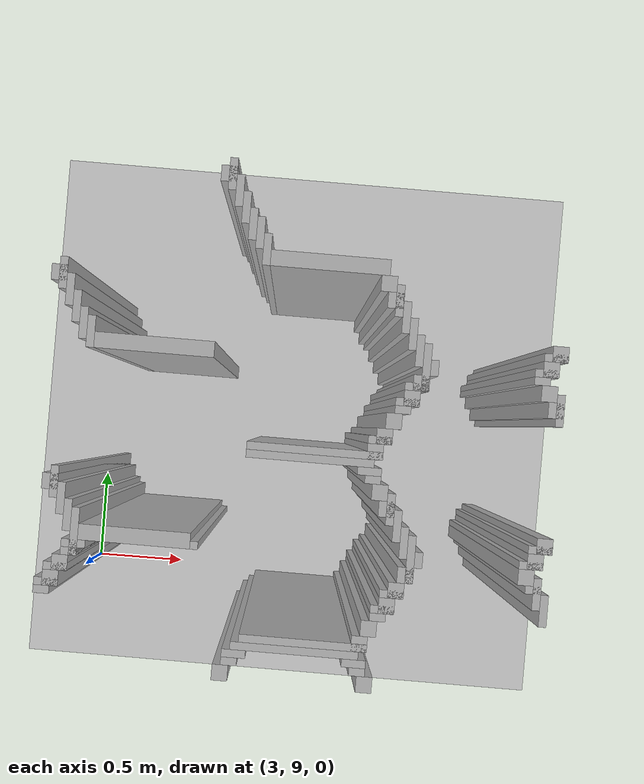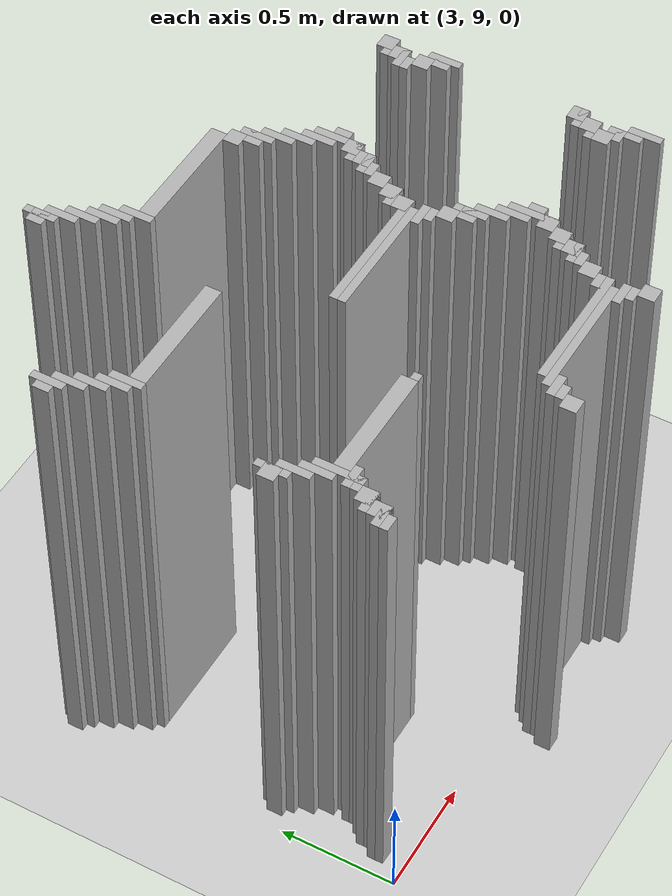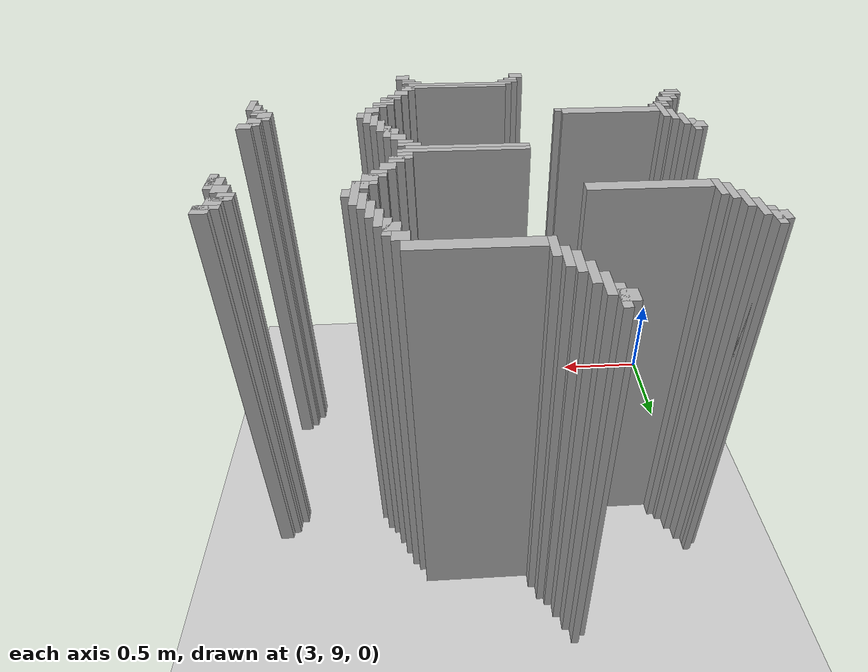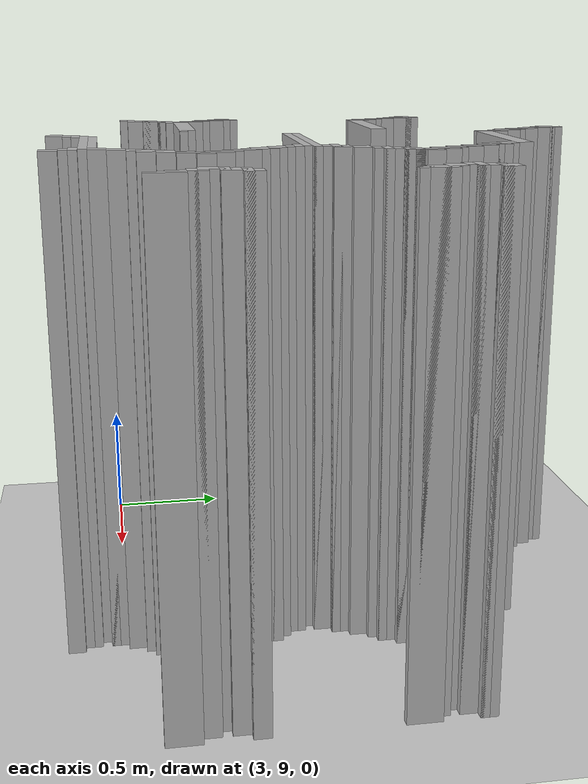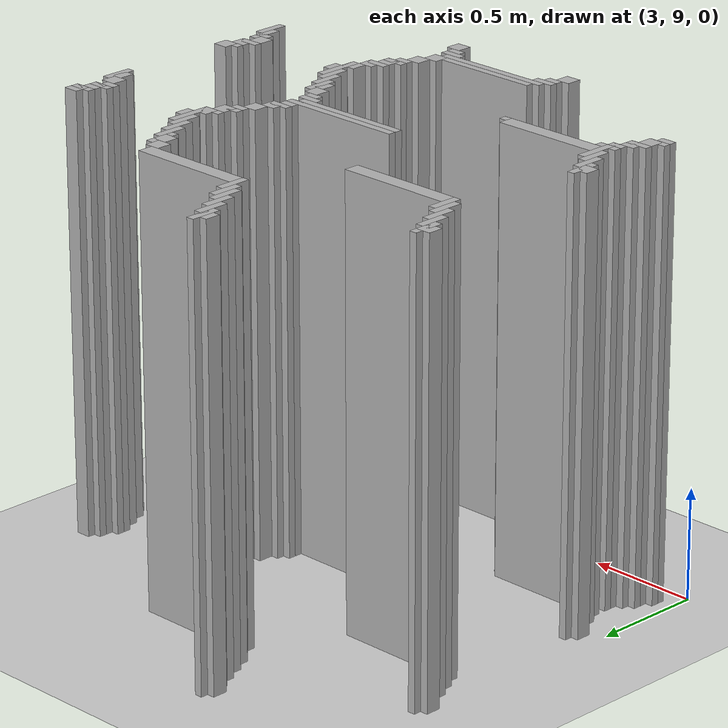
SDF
<sdf version="1.6">
 <world name="slam_world">
  <model name="ground_plane">
   <static>true</static>
   <link name="link">
    <collision name="collision">
     <geometry><plane><normal>0 0 1</normal><size>100 100</size></plane></geometry>
    </collision>
    <visual name="visual">
     <geometry><plane><normal>0 0 1</normal><size>100 100</size></plane></geometry>
     <material>
      <ambient>0.8 0.8 0.8 1</ambient>
      <diffuse>0.8 0.8 0.8 1</diffuse>
      <specular>0.8 0.8 0.8 1</specular>
     </material>
    </visual>
   </link>
  </model>
  <model name="wall_2164">
   <static>true</static>
   <pose>3.776102088167053 10.962877030162412 1.0 0 0 0</pose>
   <link name="link">
    <collision name="collision">
     <geometry><box><size>0.03480278422273782 0.13921113689095127 2.0</size></box></geometry>
    </collision>
    <visual name="visual">
     <geometry><box><size>0.03480278422273782 0.13921113689095127 2.0</size></box></geometry>
     <material><ambient>0.5 0.5 0.5 1</ambient><diffuse>0.7 0.7 0.7 1</diffuse></material>
    </visual>
   </link>
  </model>
  <model name="wall_2177">
   <static>true</static>
   <pose>3.7587006960556844 10.962877030162412 1.0 0 0 0</pose>
   <link name="link">
    <collision name="collision">
     <geometry><box><size>0.06960556844547564 0.06960556844547564 2.0</size></box></geometry>
    </collision>
    <visual name="visual">
     <geometry><box><size>0.06960556844547564 0.06960556844547564 2.0</size></box></geometry>
     <material><ambient>0.5 0.5 0.5 1</ambient><diffuse>0.7 0.7 0.7 1</diffuse></material>
    </visual>
   </link>
  </model>
  <model name="wall_2192">
   <static>true</static>
   <pose>3.810904872389791 10.893271461716937 1.0 0 0 0</pose>
   <link name="link">
    <collision name="collision">
     <geometry><box><size>0.03480278422273782 0.13921113689095127 2.0</size></box></geometry>
    </collision>
    <visual name="visual">
     <geometry><box><size>0.03480278422273782 0.13921113689095127 2.0</size></box></geometry>
     <material><ambient>0.5 0.5 0.5 1</ambient><diffuse>0.7 0.7 0.7 1</diffuse></material>
    </visual>
   </link>
  </model>
  <model name="wall_2217">
   <static>true</static>
   <pose>3.845707656612529 10.82366589327146 1.0 0 0 0</pose>
   <link name="link">
    <collision name="collision">
     <geometry><box><size>0.03480278422273782 0.13921113689095127 2.0</size></box></geometry>
    </collision>
    <visual name="visual">
     <geometry><box><size>0.03480278422273782 0.13921113689095127 2.0</size></box></geometry>
     <material><ambient>0.5 0.5 0.5 1</ambient><diffuse>0.7 0.7 0.7 1</diffuse></material>
    </visual>
   </link>
  </model>
  <model name="wall_2232">
   <static>true</static>
   <pose>3.8805104408352666 10.754060324825986 1.0 0 0 0</pose>
   <link name="link">
    <collision name="collision">
     <geometry><box><size>0.03480278422273782 0.13921113689095127 2.0</size></box></geometry>
    </collision>
    <visual name="visual">
     <geometry><box><size>0.03480278422273782 0.13921113689095127 2.0</size></box></geometry>
     <material><ambient>0.5 0.5 0.5 1</ambient><diffuse>0.7 0.7 0.7 1</diffuse></material>
    </visual>
   </link>
  </model>
  <model name="wall_2247">
   <static>true</static>
   <pose>3.9153132250580045 10.719257540603248 1.0 0 0 0</pose>
   <link name="link">
    <collision name="collision">
     <geometry><box><size>0.03480278422273782 0.13921113689095127 2.0</size></box></geometry>
    </collision>
    <visual name="visual">
     <geometry><box><size>0.03480278422273782 0.13921113689095127 2.0</size></box></geometry>
     <material><ambient>0.5 0.5 0.5 1</ambient><diffuse>0.7 0.7 0.7 1</diffuse></material>
    </visual>
   </link>
  </model>
  <model name="wall_2269">
   <static>true</static>
   <pose>3.9501160092807424 10.649651972157772 1.0 0 0 0</pose>
   <link name="link">
    <collision name="collision">
     <geometry><box><size>0.03480278422273782 0.13921113689095127 2.0</size></box></geometry>
    </collision>
    <visual name="visual">
     <geometry><box><size>0.03480278422273782 0.13921113689095127 2.0</size></box></geometry>
     <material><ambient>0.5 0.5 0.5 1</ambient><diffuse>0.7 0.7 0.7 1</diffuse></material>
    </visual>
   </link>
  </model>
  <model name="wall_2291">
   <static>true</static>
   <pose>4.228538283062645 10.614849187935034 1.0 0 0 0</pose>
   <link name="link">
    <collision name="collision">
     <geometry><box><size>0.5220417633410672 0.06960556844547564 2.0</size></box></geometry>
    </collision>
    <visual name="visual">
     <geometry><box><size>0.5220417633410672 0.06960556844547564 2.0</size></box></geometry>
     <material><ambient>0.5 0.5 0.5 1</ambient><diffuse>0.7 0.7 0.7 1</diffuse></material>
    </visual>
   </link>
  </model>
  <model name="wall_2306">
   <static>true</static>
   <pose>4.489559164733178 10.54524361948956 1.0 0 0 0</pose>
   <link name="link">
    <collision name="collision">
     <geometry><box><size>0.06960556844547564 0.06960556844547564 2.0</size></box></geometry>
    </collision>
    <visual name="visual">
     <geometry><box><size>0.06960556844547564 0.06960556844547564 2.0</size></box></geometry>
     <material><ambient>0.5 0.5 0.5 1</ambient><diffuse>0.7 0.7 0.7 1</diffuse></material>
    </visual>
   </link>
  </model>
  <model name="wall_2320">
   <static>true</static>
   <pose>3.0800464037122968 10.475638051044083 1.0 0 0 0</pose>
   <link name="link">
    <collision name="collision">
     <geometry><box><size>0.03480278422273782 0.13921113689095127 2.0</size></box></geometry>
    </collision>
    <visual name="visual">
     <geometry><box><size>0.03480278422273782 0.13921113689095127 2.0</size></box></geometry>
     <material><ambient>0.5 0.5 0.5 1</ambient><diffuse>0.7 0.7 0.7 1</diffuse></material>
    </visual>
   </link>
  </model>
  <model name="wall_2321">
   <static>true</static>
   <pose>4.541763341067285 10.475638051044083 1.0 0 0 0</pose>
   <link name="link">
    <collision name="collision">
     <geometry><box><size>0.03480278422273782 0.13921113689095127 2.0</size></box></geometry>
    </collision>
    <visual name="visual">
     <geometry><box><size>0.03480278422273782 0.13921113689095127 2.0</size></box></geometry>
     <material><ambient>0.5 0.5 0.5 1</ambient><diffuse>0.7 0.7 0.7 1</diffuse></material>
    </visual>
   </link>
  </model>
  <model name="wall_2335">
   <static>true</static>
   <pose>3.062645011600928 10.475638051044083 1.0 0 0 0</pose>
   <link name="link">
    <collision name="collision">
     <geometry><box><size>0.06960556844547564 0.06960556844547564 2.0</size></box></geometry>
    </collision>
    <visual name="visual">
     <geometry><box><size>0.06960556844547564 0.06960556844547564 2.0</size></box></geometry>
     <material><ambient>0.5 0.5 0.5 1</ambient><diffuse>0.7 0.7 0.7 1</diffuse></material>
    </visual>
   </link>
  </model>
  <model name="wall_2336">
   <static>true</static>
   <pose>4.524361948955916 10.475638051044083 1.0 0 0 0</pose>
   <link name="link">
    <collision name="collision">
     <geometry><box><size>0.06960556844547564 0.06960556844547564 2.0</size></box></geometry>
    </collision>
    <visual name="visual">
     <geometry><box><size>0.06960556844547564 0.06960556844547564 2.0</size></box></geometry>
     <material><ambient>0.5 0.5 0.5 1</ambient><diffuse>0.7 0.7 0.7 1</diffuse></material>
    </visual>
   </link>
  </model>
  <model name="wall_2350">
   <static>true</static>
   <pose>3.1148491879350346 10.406032482598608 1.0 0 0 0</pose>
   <link name="link">
    <collision name="collision">
     <geometry><box><size>0.03480278422273782 0.13921113689095127 2.0</size></box></geometry>
    </collision>
    <visual name="visual">
     <geometry><box><size>0.03480278422273782 0.13921113689095127 2.0</size></box></geometry>
     <material><ambient>0.5 0.5 0.5 1</ambient><diffuse>0.7 0.7 0.7 1</diffuse></material>
    </visual>
   </link>
  </model>
  <model name="wall_2351">
   <static>true</static>
   <pose>4.576566125290023 10.406032482598608 1.0 0 0 0</pose>
   <link name="link">
    <collision name="collision">
     <geometry><box><size>0.03480278422273782 0.13921113689095127 2.0</size></box></geometry>
    </collision>
    <visual name="visual">
     <geometry><box><size>0.03480278422273782 0.13921113689095127 2.0</size></box></geometry>
     <material><ambient>0.5 0.5 0.5 1</ambient><diffuse>0.7 0.7 0.7 1</diffuse></material>
    </visual>
   </link>
  </model>
  <model name="wall_2370">
   <static>true</static>
   <pose>3.1496519721577725 10.336426914153131 1.0 0 0 0</pose>
   <link name="link">
    <collision name="collision">
     <geometry><box><size>0.03480278422273782 0.13921113689095127 2.0</size></box></geometry>
    </collision>
    <visual name="visual">
     <geometry><box><size>0.03480278422273782 0.13921113689095127 2.0</size></box></geometry>
     <material><ambient>0.5 0.5 0.5 1</ambient><diffuse>0.7 0.7 0.7 1</diffuse></material>
    </visual>
   </link>
  </model>
  <model name="wall_2371">
   <static>true</static>
   <pose>4.611368909512761 10.336426914153131 1.0 0 0 0</pose>
   <link name="link">
    <collision name="collision">
     <geometry><box><size>0.03480278422273782 0.13921113689095127 2.0</size></box></geometry>
    </collision>
    <visual name="visual">
     <geometry><box><size>0.03480278422273782 0.13921113689095127 2.0</size></box></geometry>
     <material><ambient>0.5 0.5 0.5 1</ambient><diffuse>0.7 0.7 0.7 1</diffuse></material>
    </visual>
   </link>
  </model>
  <model name="wall_2385">
   <static>true</static>
   <pose>3.1844547563805103 10.266821345707656 1.0 0 0 0</pose>
   <link name="link">
    <collision name="collision">
     <geometry><box><size>0.03480278422273782 0.13921113689095127 2.0</size></box></geometry>
    </collision>
    <visual name="visual">
     <geometry><box><size>0.03480278422273782 0.13921113689095127 2.0</size></box></geometry>
     <material><ambient>0.5 0.5 0.5 1</ambient><diffuse>0.7 0.7 0.7 1</diffuse></material>
    </visual>
   </link>
  </model>
  <model name="wall_2386">
   <static>true</static>
   <pose>4.646171693735498 10.266821345707656 1.0 0 0 0</pose>
   <link name="link">
    <collision name="collision">
     <geometry><box><size>0.03480278422273782 0.13921113689095127 2.0</size></box></geometry>
    </collision>
    <visual name="visual">
     <geometry><box><size>0.03480278422273782 0.13921113689095127 2.0</size></box></geometry>
     <material><ambient>0.5 0.5 0.5 1</ambient><diffuse>0.7 0.7 0.7 1</diffuse></material>
    </visual>
   </link>
  </model>
  <model name="wall_2387">
   <static>true</static>
   <pose>5.25522041763341 10.301624129930394 1.0 0 0 0</pose>
   <link name="link">
    <collision name="collision">
     <geometry><box><size>0.06960556844547564 0.06960556844547564 2.0</size></box></geometry>
    </collision>
    <visual name="visual">
     <geometry><box><size>0.06960556844547564 0.06960556844547564 2.0</size></box></geometry>
     <material><ambient>0.5 0.5 0.5 1</ambient><diffuse>0.7 0.7 0.7 1</diffuse></material>
    </visual>
   </link>
  </model>
  <model name="wall_2400">
   <static>true</static>
   <pose>3.219257540603248 10.232018561484919 1.0 0 0 0</pose>
   <link name="link">
    <collision name="collision">
     <geometry><box><size>0.03480278422273782 0.13921113689095127 2.0</size></box></geometry>
    </collision>
    <visual name="visual">
     <geometry><box><size>0.03480278422273782 0.13921113689095127 2.0</size></box></geometry>
     <material><ambient>0.5 0.5 0.5 1</ambient><diffuse>0.7 0.7 0.7 1</diffuse></material>
    </visual>
   </link>
  </model>
  <model name="wall_2401">
   <static>true</static>
   <pose>4.6809744779582365 10.19721577726218 1.0 0 0 0</pose>
   <link name="link">
    <collision name="collision">
     <geometry><box><size>0.03480278422273782 0.2088167053364269 2.0</size></box></geometry>
    </collision>
    <visual name="visual">
     <geometry><box><size>0.03480278422273782 0.2088167053364269 2.0</size></box></geometry>
     <material><ambient>0.5 0.5 0.5 1</ambient><diffuse>0.7 0.7 0.7 1</diffuse></material>
    </visual>
   </link>
  </model>
  <model name="wall_2402">
   <static>true</static>
   <pose>5.237819025522041 10.284222737819025 1.0 0 0 0</pose>
   <link name="link">
    <collision name="collision">
     <geometry><box><size>0.10440835266821345 0.03480278422273782 2.0</size></box></geometry>
    </collision>
    <visual name="visual">
     <geometry><box><size>0.10440835266821345 0.03480278422273782 2.0</size></box></geometry>
     <material><ambient>0.5 0.5 0.5 1</ambient><diffuse>0.7 0.7 0.7 1</diffuse></material>
    </visual>
   </link>
  </model>
  <model name="wall_2413">
   <static>true</static>
   <pose>5.220417633410673 10.232018561484919 1.0 0 0 0</pose>
   <link name="link">
    <collision name="collision">
     <geometry><box><size>0.06960556844547564 0.06960556844547564 2.0</size></box></geometry>
    </collision>
    <visual name="visual">
     <geometry><box><size>0.06960556844547564 0.06960556844547564 2.0</size></box></geometry>
     <material><ambient>0.5 0.5 0.5 1</ambient><diffuse>0.7 0.7 0.7 1</diffuse></material>
    </visual>
   </link>
  </model>
  <model name="wall_2420">
   <static>true</static>
   <pose>3.4976798143851506 10.19721577726218 1.0 0 0 0</pose>
   <link name="link">
    <collision name="collision">
     <geometry><box><size>0.5220417633410672 0.06960556844547564 2.0</size></box></geometry>
    </collision>
    <visual name="visual">
     <geometry><box><size>0.5220417633410672 0.06960556844547564 2.0</size></box></geometry>
     <material><ambient>0.5 0.5 0.5 1</ambient><diffuse>0.7 0.7 0.7 1</diffuse></material>
    </visual>
   </link>
  </model>
  <model name="wall_2421">
   <static>true</static>
   <pose>4.715777262180974 10.19721577726218 1.0 0 0 0</pose>
   <link name="link">
    <collision name="collision">
     <geometry><box><size>0.03480278422273782 0.06960556844547564 2.0</size></box></geometry>
    </collision>
    <visual name="visual">
     <geometry><box><size>0.03480278422273782 0.06960556844547564 2.0</size></box></geometry>
     <material><ambient>0.5 0.5 0.5 1</ambient><diffuse>0.7 0.7 0.7 1</diffuse></material>
    </visual>
   </link>
  </model>
  <model name="wall_2422">
   <static>true</static>
   <pose>5.203016241299304 10.214617169373549 1.0 0 0 0</pose>
   <link name="link">
    <collision name="collision">
     <geometry><box><size>0.10440835266821345 0.03480278422273782 2.0</size></box></geometry>
    </collision>
    <visual name="visual">
     <geometry><box><size>0.10440835266821345 0.03480278422273782 2.0</size></box></geometry>
     <material><ambient>0.5 0.5 0.5 1</ambient><diffuse>0.7 0.7 0.7 1</diffuse></material>
    </visual>
   </link>
  </model>
  <model name="wall_2434">
   <static>true</static>
   <pose>5.185614849187935 10.179814385150811 1.0 0 0 0</pose>
   <link name="link">
    <collision name="collision">
     <geometry><box><size>0.06960556844547564 0.03480278422273782 2.0</size></box></geometry>
    </collision>
    <visual name="visual">
     <geometry><box><size>0.06960556844547564 0.03480278422273782 2.0</size></box></geometry>
     <material><ambient>0.5 0.5 0.5 1</ambient><diffuse>0.7 0.7 0.7 1</diffuse></material>
    </visual>
   </link>
  </model>
  <model name="wall_2441">
   <static>true</static>
   <pose>4.663573085846868 10.127610208816705 1.0 0 0 0</pose>
   <link name="link">
    <collision name="collision">
     <geometry><box><size>0.06960556844547564 0.06960556844547564 2.0</size></box></geometry>
    </collision>
    <visual name="visual">
     <geometry><box><size>0.06960556844547564 0.06960556844547564 2.0</size></box></geometry>
     <material><ambient>0.5 0.5 0.5 1</ambient><diffuse>0.7 0.7 0.7 1</diffuse></material>
    </visual>
   </link>
  </model>
  <model name="wall_2442">
   <static>true</static>
   <pose>5.220417633410673 10.127610208816705 1.0 0 0 0</pose>
   <link name="link">
    <collision name="collision">
     <geometry><box><size>0.06960556844547564 0.06960556844547564 2.0</size></box></geometry>
    </collision>
    <visual name="visual">
     <geometry><box><size>0.06960556844547564 0.06960556844547564 2.0</size></box></geometry>
     <material><ambient>0.5 0.5 0.5 1</ambient><diffuse>0.7 0.7 0.7 1</diffuse></material>
    </visual>
   </link>
  </model>
  <model name="wall_2455">
   <static>true</static>
   <pose>4.646171693735498 10.110208816705336 1.0 0 0 0</pose>
   <link name="link">
    <collision name="collision">
     <geometry><box><size>0.10440835266821345 0.03480278422273782 2.0</size></box></geometry>
    </collision>
    <visual name="visual">
     <geometry><box><size>0.10440835266821345 0.03480278422273782 2.0</size></box></geometry>
     <material><ambient>0.5 0.5 0.5 1</ambient><diffuse>0.7 0.7 0.7 1</diffuse></material>
    </visual>
   </link>
  </model>
  <model name="wall_2456">
   <static>true</static>
   <pose>5.27262180974478 10.058004640371228 1.0 0 0 0</pose>
   <link name="link">
    <collision name="collision">
     <geometry><box><size>0.03480278422273782 0.13921113689095127 2.0</size></box></geometry>
    </collision>
    <visual name="visual">
     <geometry><box><size>0.03480278422273782 0.13921113689095127 2.0</size></box></geometry>
     <material><ambient>0.5 0.5 0.5 1</ambient><diffuse>0.7 0.7 0.7 1</diffuse></material>
    </visual>
   </link>
  </model>
  <model name="wall_2469">
   <static>true</static>
   <pose>4.6287703016241295 10.058004640371228 1.0 0 0 0</pose>
   <link name="link">
    <collision name="collision">
     <geometry><box><size>0.06960556844547564 0.06960556844547564 2.0</size></box></geometry>
    </collision>
    <visual name="visual">
     <geometry><box><size>0.06960556844547564 0.06960556844547564 2.0</size></box></geometry>
     <material><ambient>0.5 0.5 0.5 1</ambient><diffuse>0.7 0.7 0.7 1</diffuse></material>
    </visual>
   </link>
  </model>
  <model name="wall_2470">
   <static>true</static>
   <pose>5.25522041763341 10.058004640371228 1.0 0 0 0</pose>
   <link name="link">
    <collision name="collision">
     <geometry><box><size>0.06960556844547564 0.06960556844547564 2.0</size></box></geometry>
    </collision>
    <visual name="visual">
     <geometry><box><size>0.06960556844547564 0.06960556844547564 2.0</size></box></geometry>
     <material><ambient>0.5 0.5 0.5 1</ambient><diffuse>0.7 0.7 0.7 1</diffuse></material>
    </visual>
   </link>
  </model>
  <model name="wall_2483">
   <static>true</static>
   <pose>4.611368909512761 10.04060324825986 1.0 0 0 0</pose>
   <link name="link">
    <collision name="collision">
     <geometry><box><size>0.10440835266821345 0.03480278422273782 2.0</size></box></geometry>
    </collision>
    <visual name="visual">
     <geometry><box><size>0.10440835266821345 0.03480278422273782 2.0</size></box></geometry>
     <material><ambient>0.5 0.5 0.5 1</ambient><diffuse>0.7 0.7 0.7 1</diffuse></material>
    </visual>
   </link>
  </model>
  <model name="wall_2495">
   <static>true</static>
   <pose>4.593967517401392 10.005800464037122 1.0 0 0 0</pose>
   <link name="link">
    <collision name="collision">
     <geometry><box><size>0.06960556844547564 0.03480278422273782 2.0</size></box></geometry>
    </collision>
    <visual name="visual">
     <geometry><box><size>0.06960556844547564 0.03480278422273782 2.0</size></box></geometry>
     <material><ambient>0.5 0.5 0.5 1</ambient><diffuse>0.7 0.7 0.7 1</diffuse></material>
    </visual>
   </link>
  </model>
  <model name="wall_2506">
   <static>true</static>
   <pose>4.559164733178654 9.953596287703016 1.0 0 0 0</pose>
   <link name="link">
    <collision name="collision">
     <geometry><box><size>0.06960556844547564 0.06960556844547564 2.0</size></box></geometry>
    </collision>
    <visual name="visual">
     <geometry><box><size>0.06960556844547564 0.06960556844547564 2.0</size></box></geometry>
     <material><ambient>0.5 0.5 0.5 1</ambient><diffuse>0.7 0.7 0.7 1</diffuse></material>
    </visual>
   </link>
  </model>
  <model name="wall_2520">
   <static>true</static>
   <pose>4.524361948955916 9.88399071925754 1.0 0 0 0</pose>
   <link name="link">
    <collision name="collision">
     <geometry><box><size>0.06960556844547564 0.06960556844547564 2.0</size></box></geometry>
    </collision>
    <visual name="visual">
     <geometry><box><size>0.06960556844547564 0.06960556844547564 2.0</size></box></geometry>
     <material><ambient>0.5 0.5 0.5 1</ambient><diffuse>0.7 0.7 0.7 1</diffuse></material>
    </visual>
   </link>
  </model>
  <model name="wall_2534">
   <static>true</static>
   <pose>4.506960556844548 9.86658932714617 1.0 0 0 0</pose>
   <link name="link">
    <collision name="collision">
     <geometry><box><size>0.10440835266821345 0.03480278422273782 2.0</size></box></geometry>
    </collision>
    <visual name="visual">
     <geometry><box><size>0.10440835266821345 0.03480278422273782 2.0</size></box></geometry>
     <material><ambient>0.5 0.5 0.5 1</ambient><diffuse>0.7 0.7 0.7 1</diffuse></material>
    </visual>
   </link>
  </model>
  <model name="wall_2546">
   <static>true</static>
   <pose>4.489559164733178 9.814385150812065 1.0 0 0 0</pose>
   <link name="link">
    <collision name="collision">
     <geometry><box><size>0.06960556844547564 0.06960556844547564 2.0</size></box></geometry>
    </collision>
    <visual name="visual">
     <geometry><box><size>0.06960556844547564 0.06960556844547564 2.0</size></box></geometry>
     <material><ambient>0.5 0.5 0.5 1</ambient><diffuse>0.7 0.7 0.7 1</diffuse></material>
    </visual>
   </link>
  </model>
  <model name="wall_2557">
   <static>true</static>
   <pose>4.228538283062645 9.796983758700696 1.0 0 0 0</pose>
   <link name="link">
    <collision name="collision">
     <geometry><box><size>0.5916473317865429 0.03480278422273782 2.0</size></box></geometry>
    </collision>
    <visual name="visual">
     <geometry><box><size>0.5916473317865429 0.03480278422273782 2.0</size></box></geometry>
     <material><ambient>0.5 0.5 0.5 1</ambient><diffuse>0.7 0.7 0.7 1</diffuse></material>
    </visual>
   </link>
  </model>
  <model name="wall_2567">
   <static>true</static>
   <pose>4.211136890951276 9.762180974477959 1.0 0 0 0</pose>
   <link name="link">
    <collision name="collision">
     <geometry><box><size>0.5568445475638051 0.03480278422273782 2.0</size></box></geometry>
    </collision>
    <visual name="visual">
     <geometry><box><size>0.5568445475638051 0.03480278422273782 2.0</size></box></geometry>
     <material><ambient>0.5 0.5 0.5 1</ambient><diffuse>0.7 0.7 0.7 1</diffuse></material>
    </visual>
   </link>
  </model>
  <model name="wall_2579">
   <static>true</static>
   <pose>4.472157772621809 9.72737819025522 1.0 0 0 0</pose>
   <link name="link">
    <collision name="collision">
     <geometry><box><size>0.10440835266821345 0.03480278422273782 2.0</size></box></geometry>
    </collision>
    <visual name="visual">
     <geometry><box><size>0.10440835266821345 0.03480278422273782 2.0</size></box></geometry>
     <material><ambient>0.5 0.5 0.5 1</ambient><diffuse>0.7 0.7 0.7 1</diffuse></material>
    </visual>
   </link>
  </model>
  <model name="wall_2592">
   <static>true</static>
   <pose>4.489559164733178 9.692575406032482 1.0 0 0 0</pose>
   <link name="link">
    <collision name="collision">
     <geometry><box><size>0.06960556844547564 0.03480278422273782 2.0</size></box></geometry>
    </collision>
    <visual name="visual">
     <geometry><box><size>0.06960556844547564 0.03480278422273782 2.0</size></box></geometry>
     <material><ambient>0.5 0.5 0.5 1</ambient><diffuse>0.7 0.7 0.7 1</diffuse></material>
    </visual>
   </link>
  </model>
  <model name="wall_2604">
   <static>true</static>
   <pose>4.524361948955916 9.640371229698376 1.0 0 0 0</pose>
   <link name="link">
    <collision name="collision">
     <geometry><box><size>0.06960556844547564 0.06960556844547564 2.0</size></box></geometry>
    </collision>
    <visual name="visual">
     <geometry><box><size>0.06960556844547564 0.06960556844547564 2.0</size></box></geometry>
     <material><ambient>0.5 0.5 0.5 1</ambient><diffuse>0.7 0.7 0.7 1</diffuse></material>
    </visual>
   </link>
  </model>
  <model name="wall_2617">
   <static>true</static>
   <pose>3.1148491879350346 9.5707656612529 1.0 0 0 0</pose>
   <link name="link">
    <collision name="collision">
     <geometry><box><size>0.03480278422273782 0.13921113689095127 2.0</size></box></geometry>
    </collision>
    <visual name="visual">
     <geometry><box><size>0.03480278422273782 0.13921113689095127 2.0</size></box></geometry>
     <material><ambient>0.5 0.5 0.5 1</ambient><diffuse>0.7 0.7 0.7 1</diffuse></material>
    </visual>
   </link>
  </model>
  <model name="wall_2618">
   <static>true</static>
   <pose>4.576566125290023 9.5707656612529 1.0 0 0 0</pose>
   <link name="link">
    <collision name="collision">
     <geometry><box><size>0.03480278422273782 0.13921113689095127 2.0</size></box></geometry>
    </collision>
    <visual name="visual">
     <geometry><box><size>0.03480278422273782 0.13921113689095127 2.0</size></box></geometry>
     <material><ambient>0.5 0.5 0.5 1</ambient><diffuse>0.7 0.7 0.7 1</diffuse></material>
    </visual>
   </link>
  </model>
  <model name="wall_2631">
   <static>true</static>
   <pose>3.097447795823666 9.5707656612529 1.0 0 0 0</pose>
   <link name="link">
    <collision name="collision">
     <geometry><box><size>0.06960556844547564 0.06960556844547564 2.0</size></box></geometry>
    </collision>
    <visual name="visual">
     <geometry><box><size>0.06960556844547564 0.06960556844547564 2.0</size></box></geometry>
     <material><ambient>0.5 0.5 0.5 1</ambient><diffuse>0.7 0.7 0.7 1</diffuse></material>
    </visual>
   </link>
  </model>
  <model name="wall_2632">
   <static>true</static>
   <pose>4.559164733178654 9.5707656612529 1.0 0 0 0</pose>
   <link name="link">
    <collision name="collision">
     <geometry><box><size>0.06960556844547564 0.06960556844547564 2.0</size></box></geometry>
    </collision>
    <visual name="visual">
     <geometry><box><size>0.06960556844547564 0.06960556844547564 2.0</size></box></geometry>
     <material><ambient>0.5 0.5 0.5 1</ambient><diffuse>0.7 0.7 0.7 1</diffuse></material>
    </visual>
   </link>
  </model>
  <model name="wall_2645">
   <static>true</static>
   <pose>3.1496519721577725 9.501160092807424 1.0 0 0 0</pose>
   <link name="link">
    <collision name="collision">
     <geometry><box><size>0.03480278422273782 0.13921113689095127 2.0</size></box></geometry>
    </collision>
    <visual name="visual">
     <geometry><box><size>0.03480278422273782 0.13921113689095127 2.0</size></box></geometry>
     <material><ambient>0.5 0.5 0.5 1</ambient><diffuse>0.7 0.7 0.7 1</diffuse></material>
    </visual>
   </link>
  </model>
  <model name="wall_2646">
   <static>true</static>
   <pose>4.611368909512761 9.501160092807424 1.0 0 0 0</pose>
   <link name="link">
    <collision name="collision">
     <geometry><box><size>0.03480278422273782 0.13921113689095127 2.0</size></box></geometry>
    </collision>
    <visual name="visual">
     <geometry><box><size>0.03480278422273782 0.13921113689095127 2.0</size></box></geometry>
     <material><ambient>0.5 0.5 0.5 1</ambient><diffuse>0.7 0.7 0.7 1</diffuse></material>
    </visual>
   </link>
  </model>
  <model name="wall_2664">
   <static>true</static>
   <pose>3.1844547563805103 9.431554524361948 1.0 0 0 0</pose>
   <link name="link">
    <collision name="collision">
     <geometry><box><size>0.03480278422273782 0.13921113689095127 2.0</size></box></geometry>
    </collision>
    <visual name="visual">
     <geometry><box><size>0.03480278422273782 0.13921113689095127 2.0</size></box></geometry>
     <material><ambient>0.5 0.5 0.5 1</ambient><diffuse>0.7 0.7 0.7 1</diffuse></material>
    </visual>
   </link>
  </model>
  <model name="wall_2665">
   <static>true</static>
   <pose>4.646171693735498 9.431554524361948 1.0 0 0 0</pose>
   <link name="link">
    <collision name="collision">
     <geometry><box><size>0.03480278422273782 0.13921113689095127 2.0</size></box></geometry>
    </collision>
    <visual name="visual">
     <geometry><box><size>0.03480278422273782 0.13921113689095127 2.0</size></box></geometry>
     <material><ambient>0.5 0.5 0.5 1</ambient><diffuse>0.7 0.7 0.7 1</diffuse></material>
    </visual>
   </link>
  </model>
  <model name="wall_2666">
   <static>true</static>
   <pose>5.25522041763341 9.466357308584687 1.0 0 0 0</pose>
   <link name="link">
    <collision name="collision">
     <geometry><box><size>0.06960556844547564 0.06960556844547564 2.0</size></box></geometry>
    </collision>
    <visual name="visual">
     <geometry><box><size>0.06960556844547564 0.06960556844547564 2.0</size></box></geometry>
     <material><ambient>0.5 0.5 0.5 1</ambient><diffuse>0.7 0.7 0.7 1</diffuse></material>
    </visual>
   </link>
  </model>
  <model name="wall_2678">
   <static>true</static>
   <pose>3.219257540603248 9.361948955916473 1.0 0 0 0</pose>
   <link name="link">
    <collision name="collision">
     <geometry><box><size>0.03480278422273782 0.2088167053364269 2.0</size></box></geometry>
    </collision>
    <visual name="visual">
     <geometry><box><size>0.03480278422273782 0.2088167053364269 2.0</size></box></geometry>
     <material><ambient>0.5 0.5 0.5 1</ambient><diffuse>0.7 0.7 0.7 1</diffuse></material>
    </visual>
   </link>
  </model>
  <model name="wall_2679">
   <static>true</static>
   <pose>4.6809744779582365 9.361948955916473 1.0 0 0 0</pose>
   <link name="link">
    <collision name="collision">
     <geometry><box><size>0.03480278422273782 0.2088167053364269 2.0</size></box></geometry>
    </collision>
    <visual name="visual">
     <geometry><box><size>0.03480278422273782 0.2088167053364269 2.0</size></box></geometry>
     <material><ambient>0.5 0.5 0.5 1</ambient><diffuse>0.7 0.7 0.7 1</diffuse></material>
    </visual>
   </link>
  </model>
  <model name="wall_2680">
   <static>true</static>
   <pose>5.237819025522041 9.448955916473318 1.0 0 0 0</pose>
   <link name="link">
    <collision name="collision">
     <geometry><box><size>0.10440835266821345 0.03480278422273782 2.0</size></box></geometry>
    </collision>
    <visual name="visual">
     <geometry><box><size>0.10440835266821345 0.03480278422273782 2.0</size></box></geometry>
     <material><ambient>0.5 0.5 0.5 1</ambient><diffuse>0.7 0.7 0.7 1</diffuse></material>
    </visual>
   </link>
  </model>
  <model name="wall_2691">
   <static>true</static>
   <pose>5.220417633410673 9.39675174013921 1.0 0 0 0</pose>
   <link name="link">
    <collision name="collision">
     <geometry><box><size>0.06960556844547564 0.06960556844547564 2.0</size></box></geometry>
    </collision>
    <visual name="visual">
     <geometry><box><size>0.06960556844547564 0.06960556844547564 2.0</size></box></geometry>
     <material><ambient>0.5 0.5 0.5 1</ambient><diffuse>0.7 0.7 0.7 1</diffuse></material>
    </visual>
   </link>
  </model>
  <model name="wall_2696">
   <static>true</static>
   <pose>3.480278422273782 9.361948955916473 1.0 0 0 0</pose>
   <link name="link">
    <collision name="collision">
     <geometry><box><size>0.4872389791183295 0.06960556844547564 2.0</size></box></geometry>
    </collision>
    <visual name="visual">
     <geometry><box><size>0.4872389791183295 0.06960556844547564 2.0</size></box></geometry>
     <material><ambient>0.5 0.5 0.5 1</ambient><diffuse>0.7 0.7 0.7 1</diffuse></material>
    </visual>
   </link>
  </model>
  <model name="wall_2697">
   <static>true</static>
   <pose>4.715777262180974 9.361948955916473 1.0 0 0 0</pose>
   <link name="link">
    <collision name="collision">
     <geometry><box><size>0.03480278422273782 0.06960556844547564 2.0</size></box></geometry>
    </collision>
    <visual name="visual">
     <geometry><box><size>0.03480278422273782 0.06960556844547564 2.0</size></box></geometry>
     <material><ambient>0.5 0.5 0.5 1</ambient><diffuse>0.7 0.7 0.7 1</diffuse></material>
    </visual>
   </link>
  </model>
  <model name="wall_2698">
   <static>true</static>
   <pose>5.203016241299304 9.379350348027842 1.0 0 0 0</pose>
   <link name="link">
    <collision name="collision">
     <geometry><box><size>0.10440835266821345 0.03480278422273782 2.0</size></box></geometry>
    </collision>
    <visual name="visual">
     <geometry><box><size>0.10440835266821345 0.03480278422273782 2.0</size></box></geometry>
     <material><ambient>0.5 0.5 0.5 1</ambient><diffuse>0.7 0.7 0.7 1</diffuse></material>
    </visual>
   </link>
  </model>
  <model name="wall_2709">
   <static>true</static>
   <pose>3.741299303944315 9.344547563805104 1.0 0 0 0</pose>
   <link name="link">
    <collision name="collision">
     <geometry><box><size>0.03480278422273782 0.03480278422273782 2.0</size></box></geometry>
    </collision>
    <visual name="visual">
     <geometry><box><size>0.03480278422273782 0.03480278422273782 2.0</size></box></geometry>
     <material><ambient>0.5 0.5 0.5 1</ambient><diffuse>0.7 0.7 0.7 1</diffuse></material>
    </visual>
   </link>
  </model>
  <model name="wall_2710">
   <static>true</static>
   <pose>5.185614849187935 9.327146171693736 1.0 0 0 0</pose>
   <link name="link">
    <collision name="collision">
     <geometry><box><size>0.06960556844547564 0.06960556844547564 2.0</size></box></geometry>
    </collision>
    <visual name="visual">
     <geometry><box><size>0.06960556844547564 0.06960556844547564 2.0</size></box></geometry>
     <material><ambient>0.5 0.5 0.5 1</ambient><diffuse>0.7 0.7 0.7 1</diffuse></material>
    </visual>
   </link>
  </model>
  <model name="wall_2721">
   <static>true</static>
   <pose>3.219257540603248 9.309744779582367 1.0 0 0 0</pose>
   <link name="link">
    <collision name="collision">
     <geometry><box><size>0.10440835266821345 0.03480278422273782 2.0</size></box></geometry>
    </collision>
    <visual name="visual">
     <geometry><box><size>0.10440835266821345 0.03480278422273782 2.0</size></box></geometry>
     <material><ambient>0.5 0.5 0.5 1</ambient><diffuse>0.7 0.7 0.7 1</diffuse></material>
    </visual>
   </link>
  </model>
  <model name="wall_2722">
   <static>true</static>
   <pose>4.663573085846868 9.292343387470996 1.0 0 0 0</pose>
   <link name="link">
    <collision name="collision">
     <geometry><box><size>0.06960556844547564 0.06960556844547564 2.0</size></box></geometry>
    </collision>
    <visual name="visual">
     <geometry><box><size>0.06960556844547564 0.06960556844547564 2.0</size></box></geometry>
     <material><ambient>0.5 0.5 0.5 1</ambient><diffuse>0.7 0.7 0.7 1</diffuse></material>
    </visual>
   </link>
  </model>
  <model name="wall_2723">
   <static>true</static>
   <pose>5.237819025522041 9.257540603248259 1.0 0 0 0</pose>
   <link name="link">
    <collision name="collision">
     <geometry><box><size>0.03480278422273782 0.13921113689095127 2.0</size></box></geometry>
    </collision>
    <visual name="visual">
     <geometry><box><size>0.03480278422273782 0.13921113689095127 2.0</size></box></geometry>
     <material><ambient>0.5 0.5 0.5 1</ambient><diffuse>0.7 0.7 0.7 1</diffuse></material>
    </visual>
   </link>
  </model>
  <model name="wall_2737">
   <static>true</static>
   <pose>3.201856148491879 9.274941995359628 1.0 0 0 0</pose>
   <link name="link">
    <collision name="collision">
     <geometry><box><size>0.06960556844547564 0.03480278422273782 2.0</size></box></geometry>
    </collision>
    <visual name="visual">
     <geometry><box><size>0.06960556844547564 0.03480278422273782 2.0</size></box></geometry>
     <material><ambient>0.5 0.5 0.5 1</ambient><diffuse>0.7 0.7 0.7 1</diffuse></material>
    </visual>
   </link>
  </model>
  <model name="wall_2738">
   <static>true</static>
   <pose>5.220417633410673 9.274941995359628 1.0 0 0 0</pose>
   <link name="link">
    <collision name="collision">
     <geometry><box><size>0.06960556844547564 0.03480278422273782 2.0</size></box></geometry>
    </collision>
    <visual name="visual">
     <geometry><box><size>0.06960556844547564 0.03480278422273782 2.0</size></box></geometry>
     <material><ambient>0.5 0.5 0.5 1</ambient><diffuse>0.7 0.7 0.7 1</diffuse></material>
    </visual>
   </link>
  </model>
  <model name="wall_2750">
   <static>true</static>
   <pose>3.167053364269141 9.222737819025522 1.0 0 0 0</pose>
   <link name="link">
    <collision name="collision">
     <geometry><box><size>0.06960556844547564 0.06960556844547564 2.0</size></box></geometry>
    </collision>
    <visual name="visual">
     <geometry><box><size>0.06960556844547564 0.06960556844547564 2.0</size></box></geometry>
     <material><ambient>0.5 0.5 0.5 1</ambient><diffuse>0.7 0.7 0.7 1</diffuse></material>
    </visual>
   </link>
  </model>
  <model name="wall_2751">
   <static>true</static>
   <pose>4.6287703016241295 9.222737819025522 1.0 0 0 0</pose>
   <link name="link">
    <collision name="collision">
     <geometry><box><size>0.06960556844547564 0.06960556844547564 2.0</size></box></geometry>
    </collision>
    <visual name="visual">
     <geometry><box><size>0.06960556844547564 0.06960556844547564 2.0</size></box></geometry>
     <material><ambient>0.5 0.5 0.5 1</ambient><diffuse>0.7 0.7 0.7 1</diffuse></material>
    </visual>
   </link>
  </model>
  <model name="wall_2752">
   <static>true</static>
   <pose>5.27262180974478 9.187935034802784 1.0 0 0 0</pose>
   <link name="link">
    <collision name="collision">
     <geometry><box><size>0.03480278422273782 0.13921113689095127 2.0</size></box></geometry>
    </collision>
    <visual name="visual">
     <geometry><box><size>0.03480278422273782 0.13921113689095127 2.0</size></box></geometry>
     <material><ambient>0.5 0.5 0.5 1</ambient><diffuse>0.7 0.7 0.7 1</diffuse></material>
    </visual>
   </link>
  </model>
  <model name="wall_2766">
   <static>true</static>
   <pose>3.1496519721577725 9.205336426914153 1.0 0 0 0</pose>
   <link name="link">
    <collision name="collision">
     <geometry><box><size>0.10440835266821345 0.03480278422273782 2.0</size></box></geometry>
    </collision>
    <visual name="visual">
     <geometry><box><size>0.10440835266821345 0.03480278422273782 2.0</size></box></geometry>
     <material><ambient>0.5 0.5 0.5 1</ambient><diffuse>0.7 0.7 0.7 1</diffuse></material>
    </visual>
   </link>
  </model>
  <model name="wall_2767">
   <static>true</static>
   <pose>4.611368909512761 9.205336426914153 1.0 0 0 0</pose>
   <link name="link">
    <collision name="collision">
     <geometry><box><size>0.10440835266821345 0.03480278422273782 2.0</size></box></geometry>
    </collision>
    <visual name="visual">
     <geometry><box><size>0.10440835266821345 0.03480278422273782 2.0</size></box></geometry>
     <material><ambient>0.5 0.5 0.5 1</ambient><diffuse>0.7 0.7 0.7 1</diffuse></material>
    </visual>
   </link>
  </model>
  <model name="wall_2782">
   <static>true</static>
   <pose>3.1322505800464038 9.153132250580047 1.0 0 0 0</pose>
   <link name="link">
    <collision name="collision">
     <geometry><box><size>0.06960556844547564 0.06960556844547564 2.0</size></box></geometry>
    </collision>
    <visual name="visual">
     <geometry><box><size>0.06960556844547564 0.06960556844547564 2.0</size></box></geometry>
     <material><ambient>0.5 0.5 0.5 1</ambient><diffuse>0.7 0.7 0.7 1</diffuse></material>
    </visual>
   </link>
  </model>
  <model name="wall_2783">
   <static>true</static>
   <pose>4.593967517401392 9.153132250580047 1.0 0 0 0</pose>
   <link name="link">
    <collision name="collision">
     <geometry><box><size>0.06960556844547564 0.06960556844547564 2.0</size></box></geometry>
    </collision>
    <visual name="visual">
     <geometry><box><size>0.06960556844547564 0.06960556844547564 2.0</size></box></geometry>
     <material><ambient>0.5 0.5 0.5 1</ambient><diffuse>0.7 0.7 0.7 1</diffuse></material>
    </visual>
   </link>
  </model>
  <model name="wall_2794">
   <static>true</static>
   <pose>3.1148491879350346 9.135730858468676 1.0 0 0 0</pose>
   <link name="link">
    <collision name="collision">
     <geometry><box><size>0.10440835266821345 0.03480278422273782 2.0</size></box></geometry>
    </collision>
    <visual name="visual">
     <geometry><box><size>0.10440835266821345 0.03480278422273782 2.0</size></box></geometry>
     <material><ambient>0.5 0.5 0.5 1</ambient><diffuse>0.7 0.7 0.7 1</diffuse></material>
    </visual>
   </link>
  </model>
  <model name="wall_2795">
   <static>true</static>
   <pose>4.576566125290023 9.135730858468676 1.0 0 0 0</pose>
   <link name="link">
    <collision name="collision">
     <geometry><box><size>0.10440835266821345 0.03480278422273782 2.0</size></box></geometry>
    </collision>
    <visual name="visual">
     <geometry><box><size>0.10440835266821345 0.03480278422273782 2.0</size></box></geometry>
     <material><ambient>0.5 0.5 0.5 1</ambient><diffuse>0.7 0.7 0.7 1</diffuse></material>
    </visual>
   </link>
  </model>
  <model name="wall_2808">
   <static>true</static>
   <pose>3.097447795823666 9.100928074245939 1.0 0 0 0</pose>
   <link name="link">
    <collision name="collision">
     <geometry><box><size>0.06960556844547564 0.03480278422273782 2.0</size></box></geometry>
    </collision>
    <visual name="visual">
     <geometry><box><size>0.06960556844547564 0.03480278422273782 2.0</size></box></geometry>
     <material><ambient>0.5 0.5 0.5 1</ambient><diffuse>0.7 0.7 0.7 1</diffuse></material>
    </visual>
   </link>
  </model>
  <model name="wall_2809">
   <static>true</static>
   <pose>4.559164733178654 9.100928074245939 1.0 0 0 0</pose>
   <link name="link">
    <collision name="collision">
     <geometry><box><size>0.06960556844547564 0.03480278422273782 2.0</size></box></geometry>
    </collision>
    <visual name="visual">
     <geometry><box><size>0.06960556844547564 0.03480278422273782 2.0</size></box></geometry>
     <material><ambient>0.5 0.5 0.5 1</ambient><diffuse>0.7 0.7 0.7 1</diffuse></material>
    </visual>
   </link>
  </model>
  <model name="wall_2820">
   <static>true</static>
   <pose>4.524361948955916 9.048723897911833 1.0 0 0 0</pose>
   <link name="link">
    <collision name="collision">
     <geometry><box><size>0.06960556844547564 0.06960556844547564 2.0</size></box></geometry>
    </collision>
    <visual name="visual">
     <geometry><box><size>0.06960556844547564 0.06960556844547564 2.0</size></box></geometry>
     <material><ambient>0.5 0.5 0.5 1</ambient><diffuse>0.7 0.7 0.7 1</diffuse></material>
    </visual>
   </link>
  </model>
  <model name="wall_2836">
   <static>true</static>
   <pose>4.489559164733178 8.979118329466356 1.0 0 0 0</pose>
   <link name="link">
    <collision name="collision">
     <geometry><box><size>0.06960556844547564 0.06960556844547564 2.0</size></box></geometry>
    </collision>
    <visual name="visual">
     <geometry><box><size>0.06960556844547564 0.06960556844547564 2.0</size></box></geometry>
     <material><ambient>0.5 0.5 0.5 1</ambient><diffuse>0.7 0.7 0.7 1</diffuse></material>
    </visual>
   </link>
  </model>
  <model name="wall_2852">
   <static>true</static>
   <pose>4.2459396751740135 8.961716937354987 1.0 0 0 0</pose>
   <link name="link">
    <collision name="collision">
     <geometry><box><size>0.5568445475638051 0.03480278422273782 2.0</size></box></geometry>
    </collision>
    <visual name="visual">
     <geometry><box><size>0.5568445475638051 0.03480278422273782 2.0</size></box></geometry>
     <material><ambient>0.5 0.5 0.5 1</ambient><diffuse>0.7 0.7 0.7 1</diffuse></material>
    </visual>
   </link>
  </model>
  <model name="wall_2866">
   <static>true</static>
   <pose>4.211136890951276 8.92691415313225 1.0 0 0 0</pose>
   <link name="link">
    <collision name="collision">
     <geometry><box><size>0.5568445475638051 0.03480278422273782 2.0</size></box></geometry>
    </collision>
    <visual name="visual">
     <geometry><box><size>0.5568445475638051 0.03480278422273782 2.0</size></box></geometry>
     <material><ambient>0.5 0.5 0.5 1</ambient><diffuse>0.7 0.7 0.7 1</diffuse></material>
    </visual>
   </link>
  </model>
  <model name="wall_2878">
   <static>true</static>
   <pose>3.9501160092807424 8.892111368909513 1.0 0 0 0</pose>
   <link name="link">
    <collision name="collision">
     <geometry><box><size>0.10440835266821345 0.03480278422273782 2.0</size></box></geometry>
    </collision>
    <visual name="visual">
     <geometry><box><size>0.10440835266821345 0.03480278422273782 2.0</size></box></geometry>
     <material><ambient>0.5 0.5 0.5 1</ambient><diffuse>0.7 0.7 0.7 1</diffuse></material>
    </visual>
   </link>
  </model>
  <model name="wall_2879">
   <static>true</static>
   <pose>4.472157772621809 8.892111368909513 1.0 0 0 0</pose>
   <link name="link">
    <collision name="collision">
     <geometry><box><size>0.10440835266821345 0.03480278422273782 2.0</size></box></geometry>
    </collision>
    <visual name="visual">
     <geometry><box><size>0.10440835266821345 0.03480278422273782 2.0</size></box></geometry>
     <material><ambient>0.5 0.5 0.5 1</ambient><diffuse>0.7 0.7 0.7 1</diffuse></material>
    </visual>
   </link>
  </model>
  <model name="wall_2894">
   <static>true</static>
   <pose>3.932714617169373 8.857308584686775 1.0 0 0 0</pose>
   <link name="link">
    <collision name="collision">
     <geometry><box><size>0.06960556844547564 0.03480278422273782 2.0</size></box></geometry>
    </collision>
    <visual name="visual">
     <geometry><box><size>0.06960556844547564 0.03480278422273782 2.0</size></box></geometry>
     <material><ambient>0.5 0.5 0.5 1</ambient><diffuse>0.7 0.7 0.7 1</diffuse></material>
    </visual>
   </link>
  </model>
  <model name="wall_2895">
   <static>true</static>
   <pose>4.489559164733178 8.857308584686775 1.0 0 0 0</pose>
   <link name="link">
    <collision name="collision">
     <geometry><box><size>0.06960556844547564 0.03480278422273782 2.0</size></box></geometry>
    </collision>
    <visual name="visual">
     <geometry><box><size>0.06960556844547564 0.03480278422273782 2.0</size></box></geometry>
     <material><ambient>0.5 0.5 0.5 1</ambient><diffuse>0.7 0.7 0.7 1</diffuse></material>
    </visual>
   </link>
  </model>
  <model name="wall_2909">
   <static>true</static>
   <pose>3.897911832946636 8.805104408352667 1.0 0 0 0</pose>
   <link name="link">
    <collision name="collision">
     <geometry><box><size>0.06960556844547564 0.06960556844547564 2.0</size></box></geometry>
    </collision>
    <visual name="visual">
     <geometry><box><size>0.06960556844547564 0.06960556844547564 2.0</size></box></geometry>
     <material><ambient>0.5 0.5 0.5 1</ambient><diffuse>0.7 0.7 0.7 1</diffuse></material>
    </visual>
   </link>
  </model>
  <model name="wall_2910">
   <static>true</static>
   <pose>4.524361948955916 8.805104408352667 1.0 0 0 0</pose>
   <link name="link">
    <collision name="collision">
     <geometry><box><size>0.06960556844547564 0.06960556844547564 2.0</size></box></geometry>
    </collision>
    <visual name="visual">
     <geometry><box><size>0.06960556844547564 0.06960556844547564 2.0</size></box></geometry>
     <material><ambient>0.5 0.5 0.5 1</ambient><diffuse>0.7 0.7 0.7 1</diffuse></material>
    </visual>
   </link>
  </model>
 </world>
</sdf>
